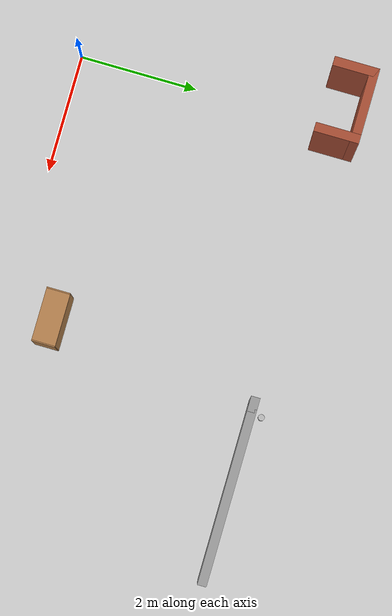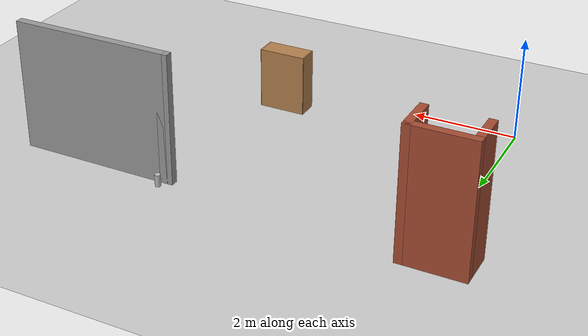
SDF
<sdf version="1.7">
 <world name="default">
  <light name="sun" type="directional">
   <pose>0 0 10 0 -0 0</pose>
   <diffuse>0.8 0.8 0.8 1</diffuse>
   <specular>0.2 0.2 0.2 1</specular>
   <attenuation>
    <range>1000</range>
    <constant>0.9</constant>
    <linear>0.01</linear>
    <quadratic>0.001</quadratic>
   </attenuation>
   <direction>-0.5 0.1 -0.9</direction>
   <spot><inner_angle>0</inner_angle><outer_angle>0</outer_angle><falloff>0</falloff></spot>
  </light>
  <model name="ground_plane">
   <static>1</static>
   <link name="link">
    <collision name="collision">
     <geometry><plane><normal>0 0 1</normal><size>100 100</size></plane></geometry>
     <surface><friction><ode><mu>100</mu><mu2>50</mu2></ode></friction></surface>
    </collision>
    <visual name="visual">
     <cast_shadows>0</cast_shadows>
     <geometry><plane><normal>0 0 1</normal><size>100 100</size></plane></geometry>
     <material>
      <script><uri>file://media/materials/scripts/gazebo.material</uri><name>Gazebo/Grey</name></script>
     </material>
    </visual>
   </link>
  </model>
  <gravity>0 0 -9.8</gravity>
  <magnetic_field>6e-06 2.3e-05 -4.2e-05</magnetic_field>
  <atmosphere type="adiabatic"/>
  <physics type="ode">
   <max_step_size>0.001</max_step_size>
   <real_time_factor>1</real_time_factor>
   <real_time_update_rate>1000</real_time_update_rate>
  </physics>
  <scene><ambient>0.4 0.4 0.4 1</ambient><background>0.7 0.7 0.7 1</background><shadows>1</shadows></scene>
  <audio><device>default</device></audio>
  <spherical_coordinates>
   <surface_model>EARTH_WGS84</surface_model>
   <latitude_deg>0</latitude_deg>
   <longitude_deg>0</longitude_deg>
   <elevation>0</elevation>
   <heading_deg>0</heading_deg>
  </spherical_coordinates>
  <model name="bookshelf">
   <static>1</static>
   <link name="link">
    <inertial><mass>1</mass></inertial>
    <collision name="back">
     <pose>0 0.005 0.6 0 -0 0</pose>
     <geometry><box><size>0.9 0.01 1.2</size></box></geometry>
    </collision>
    <visual name="visual1">
     <pose>0 0.005 0.6 0 -0 0</pose>
     <geometry><box><size>0.9 0.01 1.2</size></box></geometry>
     <material>
      <script><uri>file://media/materials/scripts/gazebo.material</uri><name>Gazebo/Wood</name></script>
     </material>
    </visual>
    <collision name="left_side">
     <pose>0.45 -0.195 0.6 0 -0 0</pose>
     <geometry><box><size>0.02 0.4 1.2</size></box></geometry>
    </collision>
    <visual name="visual2">
     <pose>0.45 -0.195 0.6 0 -0 0</pose>
     <geometry><box><size>0.02 0.4 1.2</size></box></geometry>
     <material>
      <script><uri>file://media/materials/scripts/gazebo.material</uri><name>Gazebo/Wood</name></script>
     </material>
    </visual>
    <collision name="right_side">
     <pose>-0.45 -0.195 0.6 0 -0 0</pose>
     <geometry><box><size>0.02 0.4 1.2</size></box></geometry>
    </collision>
    <visual name="visual3">
     <pose>-0.45 -0.195 0.6 0 -0 0</pose>
     <geometry><box><size>0.02 0.4 1.2</size></box></geometry>
     <material>
      <script><uri>file://media/materials/scripts/gazebo.material</uri><name>Gazebo/Wood</name></script>
     </material>
    </visual>
    <collision name="bottom">
     <pose>0 -0.195 0.03 0 -0 0</pose>
     <geometry><box><size>0.88 0.4 0.06</size></box></geometry>
    </collision>
    <visual name="visual4">
     <pose>0 -0.195 0.03 0 -0 0</pose>
     <geometry><box><size>0.88 0.4 0.06</size></box></geometry>
     <material>
      <script><uri>file://media/materials/scripts/gazebo.material</uri><name>Gazebo/Wood</name></script>
     </material>
    </visual>
    <collision name="top">
     <pose>0 -0.195 1.19 0 -0 0</pose>
     <geometry><box><size>0.88 0.4 0.02</size></box></geometry>
    </collision>
    <visual name="visual5">
     <pose>0 -0.195 1.19 0 -0 0</pose>
     <geometry><box><size>0.88 0.4 0.02</size></box></geometry>
     <material>
      <script><uri>file://media/materials/scripts/gazebo.material</uri><name>Gazebo/Wood</name></script>
     </material>
    </visual>
    <collision name="low_shelf">
     <pose>0 -0.195 0.43 0 -0 0</pose>
     <geometry><box><size>0.88 0.4 0.02</size></box></geometry>
    </collision>
    <visual name="visual6">
     <pose>0 -0.195 0.43 0 -0 0</pose>
     <geometry><box><size>0.88 0.4 0.02</size></box></geometry>
     <material>
      <script><uri>file://media/materials/scripts/gazebo.material</uri><name>Gazebo/Wood</name></script>
     </material>
    </visual>
    <collision name="high_shelf">
     <pose>0 -0.195 0.8 0 -0 0</pose>
     <geometry><box><size>0.88 0.4 0.02</size></box></geometry>
    </collision>
    <visual name="visual7">
     <pose>0 -0.195 0.8 0 -0 0</pose>
     <geometry><box><size>0.88 0.4 0.02</size></box></geometry>
     <material>
      <script><uri>file://media/materials/scripts/gazebo.material</uri><name>Gazebo/Wood</name></script>
     </material>
    </visual>
   </link>
   <pose>4.40336 1 0 0 -0 0</pose>
  </model>
  <model name="beer">
   <link name="link">
    <pose>0 0 0.115 0 -0 0</pose>
    <inertial>
     <mass>0.39</mass>
     <inertia><ixx>0.00058</ixx><ixy>0</ixy><ixz>0</ixz><iyy>0.00058</iyy><iyz>0</iyz><izz>0.00019</izz></inertia>
    </inertial>
    <collision name="collision">
     <geometry><cylinder><radius>0.055</radius><length>0.23</length></cylinder></geometry>
    </collision>
    <visual name="visual">
     <geometry><cylinder><radius>0.055</radius><length>0.23</length></cylinder></geometry>
     <material>
      <script>
       <uri>model://beer/materials/scripts</uri>
       <uri>model://beer/materials/textures</uri>
       <name>Beer/Diffuse</name>
      </script>
     </material>
    </visual>
   </link>
   <pose>5 4.56902 -7e-06 -1e-06 -0 -1.5e-05</pose>
  </model>
  <model name="test_world">
   <pose>3.5439 4.72732 0 0 -0 0</pose>
   <link name="Wall_0">
    <collision name="Wall_0_Collision">
     <geometry><box><size>0.25 0.15 2.5</size></box></geometry>
     <pose>0 0 1.25 0 -0 0</pose>
    </collision>
    <visual name="Wall_0_Visual">
     <pose>0 0 1.25 0 -0 0</pose>
     <geometry><box><size>0.25 0.15 2.5</size></box></geometry>
     <material>
      <script><uri>file://media/materials/scripts/gazebo.material</uri><name>Gazebo/Grey</name></script>
      <ambient>1 1 1 1</ambient>
     </material>
     <meta><layer>0</layer></meta>
    </visual>
    <pose>1.365 -0.3575 0 0 -0 0</pose>
   </link>
   <link name="Wall_1">
    <collision name="Wall_1_Collision">
     <geometry><box><size>3 0.15 2.5</size></box></geometry>
     <pose>0 0 1.25 0 -0 0</pose>
    </collision>
    <visual name="Wall_1_Visual">
     <pose>0 0 1.25 0 -0 0</pose>
     <geometry><box><size>3 0.15 2.5</size></box></geometry>
     <material>
      <script><uri>file://media/materials/scripts/gazebo.material</uri><name>Gazebo/Grey</name></script>
      <ambient>1 1 1 1</ambient>
     </material>
     <meta><layer>0</layer></meta>
    </visual>
    <pose>2.84 -0.3575 0 0 -0 0</pose>
   </link>
   <link name="Wall_5">
    <collision name="Wall_5_Collision">
     <geometry><box><size>0.75 0.15 2.5</size></box></geometry>
     <pose>0 0 1.25 0 -0 0</pose>
    </collision>
    <visual name="Wall_5_Visual">
     <pose>0 0 1.25 0 -0 0</pose>
     <geometry><box><size>0.75 0.15 2.5</size></box></geometry>
     <material>
      <script><uri>file://media/materials/scripts/gazebo.material</uri><name>Gazebo/Bricks</name></script>
      <ambient>1 1 1 1</ambient>
     </material>
     <meta><layer>0</layer></meta>
    </visual>
    <pose>-3.165 -0.2675 0 0 -0 1.5708</pose>
   </link>
   <link name="Wall_6">
    <collision name="Wall_6_Collision">
     <geometry><box><size>1.25 0.15 2.5</size></box></geometry>
     <pose>0 0 1.25 0 -0 0</pose>
    </collision>
    <visual name="Wall_6_Visual">
     <pose>0 0 1.25 0 -0 0</pose>
     <geometry><box><size>1.25 0.15 2.5</size></box></geometry>
     <material>
      <script><uri>file://media/materials/scripts/gazebo.material</uri><name>Gazebo/Bricks</name></script>
      <ambient>1 1 1 1</ambient>
     </material>
     <meta><layer>0</layer></meta>
    </visual>
    <pose>-3.715 0.0325 0 0 -0 3.14159</pose>
   </link>
   <link name="Wall_7">
    <collision name="Wall_7_Collision">
     <geometry><box><size>0.75 0.15 2.5</size></box></geometry>
     <pose>0 0 1.25 0 -0 0</pose>
    </collision>
    <visual name="Wall_7_Visual">
     <pose>0 0 1.25 0 -0 0</pose>
     <geometry><box><size>0.75 0.15 2.5</size></box></geometry>
     <material>
      <script><uri>file://media/materials/scripts/gazebo.material</uri><name>Gazebo/Bricks</name></script>
      <ambient>1 1 1 1</ambient>
     </material>
     <meta><layer>0</layer></meta>
    </visual>
    <pose>-4.265 -0.2675 0 0 -0 -1.5708</pose>
   </link>
   <static>1</static>
  </model>
 </world>
</sdf>
